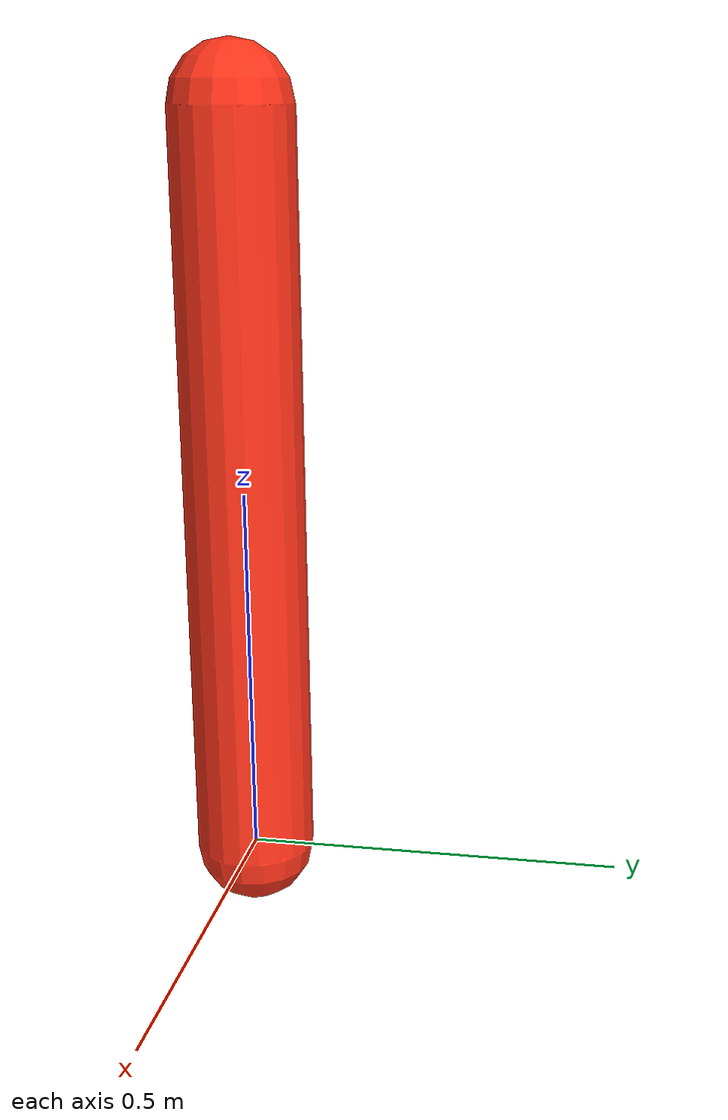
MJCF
<mujoco model="pendulum">
  <compiler angle="degree" coordinate="local" inertiafromgeom="true" />
  <default>
    <joint armature="0.01" damping=".1" limited="true"/>
    <motor ctrlrange="-1 1" ctrllimited="true"/>
    <geom conaffinity="0" condim="3" contype="1" density="1000" friction="1.2 .1 .1" rgba="0.8 0.6 .4 1"/>
  </default>
  <option integrator="RK4" iterations="50" solver="PGS" timestep="0.003" />
  <worldbody>
    <body name="root" pos="0 0 1">
      <freejoint name="root"/>
      <body name="pendulum" pos="0 0 0">
        <inertial mass="1.0" pos="0 0 0" diaginertia="0.001 0.001 0.001" />
        <joint name="pendulum_joint" axis="0 1 0" damping="0" limited="false" pos="0 0 0" stiffness="0" type="hinge"/>
        <geom fromto="0.0 0.0 0.0 0.0 0.0 -1.0" name="pendulum_geom" size="0.08" type="capsule" rgba=".999 .2 .1 1"/>
      </body>
    </body>body>

  </worldbody>
  <actuator>
    <motor name="pendulum_motor" gear="100" joint="pendulum_joint"/>
  </actuator>
</mujoco>
